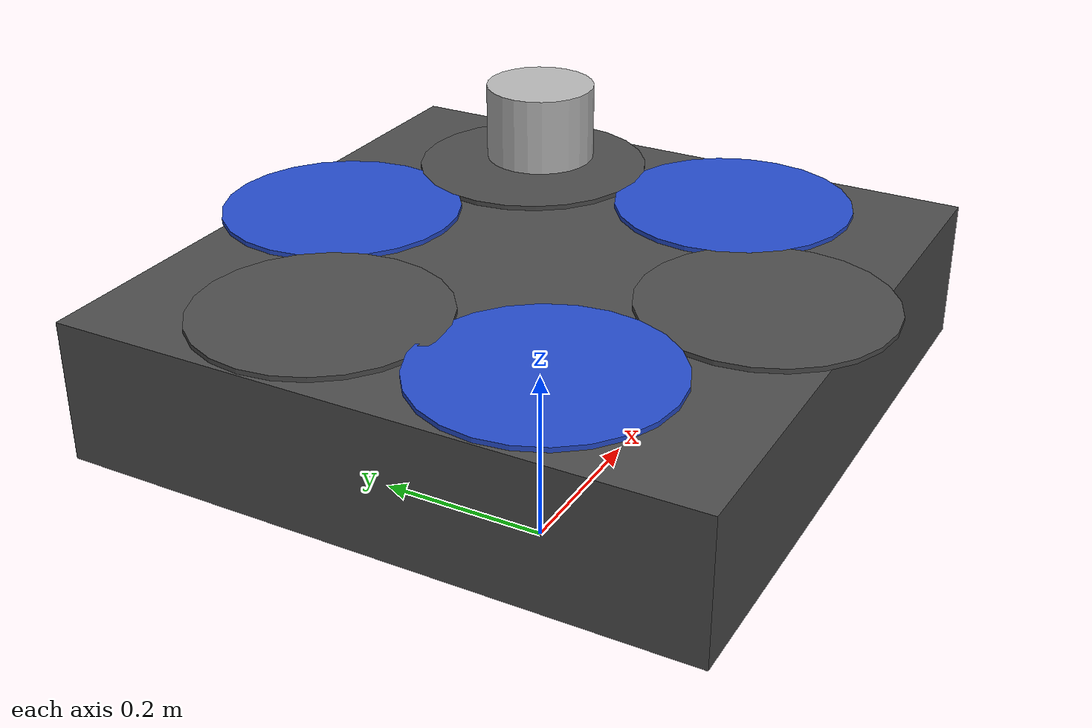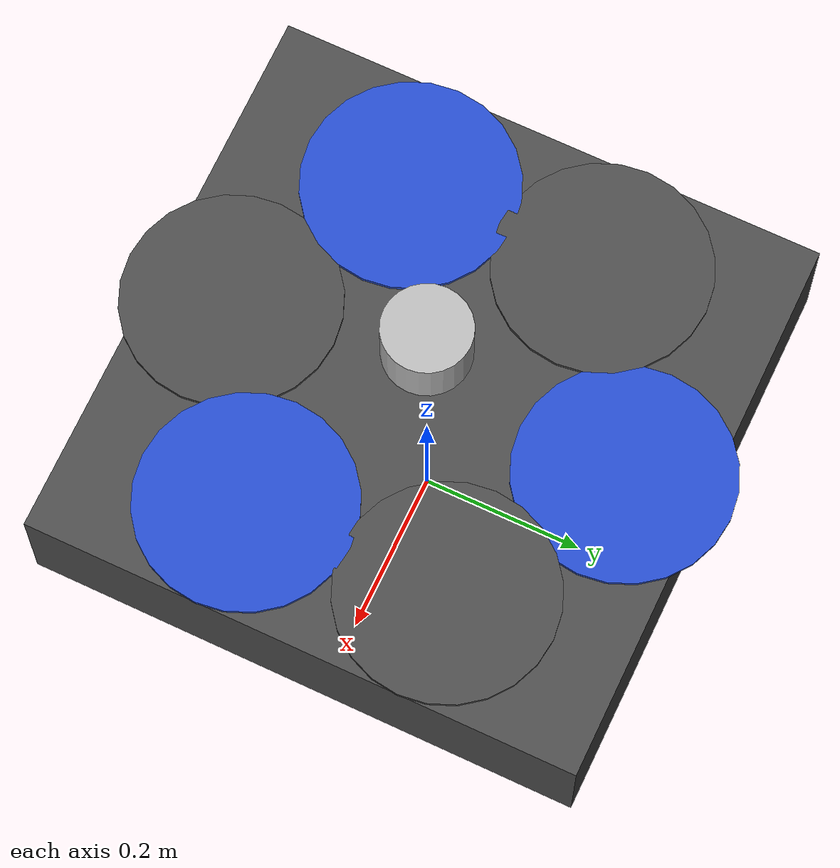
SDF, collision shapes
<?xml version="1.0" ?>
<sdf version='1.5'>
  <model name='typhoon_h480_velodyne'>

    <include>
      <uri>model://typhoon_h480_nocam</uri>
      <name>typhoon_h480_nocam</name>
    </include>

    <include>
      <uri>model://velodyne</uri>
      <pose>0 0 0.45 0 0 1.5708</pose>
      <name>velodyne</name>
    </include>

    <joint name="velodyne_joint" type="fixed">
      <child>velodyne::base_footprint</child>
      <parent>typhoon_h480_nocam::base_link</parent>
    </joint>

  </model>
</sdf>
<!-- vim: set noet fenc=utf-8 ff=unix sts=0 sw=4 ts=4 : -->

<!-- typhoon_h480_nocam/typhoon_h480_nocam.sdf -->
<sdf version='1.5'>
  <model name='typhoon_h480'>
    <!-- Typhoon H body -->
    <pose>0 0 0.26 0 0 3.1415927</pose>
    <link name='base_link'>
      <pose>0 0 0 0 0 0</pose>
      <inertial>
        <!-- rear reference point X: -100.044mm, CAD offset: 1001.049mm -->
        <!-- top reference point Z: 33.8663mm, CAD offset: 42.8698mm -->
        <pose>0.001005 0 -0.0090035 0 0 0</pose>
        <mass>2.02</mass>
        <inertia>
          <ixx>0.011</ixx>
          <ixy>0</ixy>
          <ixz>0</ixz>
          <iyy>0.015</iyy>
          <iyz>0</iyz>
          <izz>0.021</izz>
        </inertia>
      </inertial>
      <collision name='base_link_collision'>
        <pose>0 0 0.0 0 0 0</pose>
        <geometry>
          <box>
            <size>0.67 0.67 0.15</size>
          </box>
        </geometry>
        <surface>
          <contact>
            <ode>
              <min_depth>0.001</min_depth>
              <max_vel>0</max_vel>
            </ode>
          </contact>
          <friction>
            <ode/>
          </friction>
        </surface>
      </collision>
      <visual name='base_link_visual'>
        <pose>0 0 0 0 0 0</pose>
        <geometry>
          <mesh>
            <scale>0.001 0.001 0.001</scale>
            <uri>model://typhoon_h480/meshes/main_body_remeshed_v3.stl</uri>
          </mesh>
        </geometry>
        <material>
          <script>
            <name>Gazebo/DarkGrey</name>
            <uri>file://media/materials/scripts/gazebo.material</uri>
          </script>
        </material>
      </visual>
      <gravity>1</gravity>
      <velocity_decay/>
      <self_collide>0</self_collide>
    </link>

    <link name="left_leg">
      <inertial>
        <!-- place holder -->
        <pose>0 -0.14314 -0.207252 0 0 0</pose>
        <mass>0.1</mass>
        <inertia>
          <ixx>0.001</ixx>
          <ixy>0</ixy>
          <ixz>0</ixz>
          <iyy>0.001</iyy>
          <iyz>0</iyz>
          <izz>0.001</izz>
        </inertia>
      </inertial>
      <collision name='collision'>
        <pose>-0.005 -0.14314 -0.207252 0 1.56893 0</pose>
        <geometry>
          <cylinder>
            <radius>0.012209</radius>
            <length>0.3</length>
          </cylinder>
        </geometry>
        <surface>
          <friction>
            <ode>
              <mu>1</mu>
              <mu2>1</mu2>
            </ode>
          </friction>
          <contact>
            <ode>
              <kp>1e+8</kp>
              <kd>1</kd>
              <max_vel>0.01</max_vel>
              <min_depth>0.001</min_depth>
            </ode>
          </contact>
        </surface>
      </collision>
      <collision name='collision_bar'>
        <pose>0.00052 -0.08503 -0.121187 -0.501318 0 0</pose>
        <geometry>
          <cylinder>
            <radius>0.00914984</radius>
            <length>0.176893</length>
          </cylinder>
        </geometry>
        <surface>
          <friction>
            <ode>
              <mu>1</mu>
              <mu2>1</mu2>
            </ode>
          </friction>
          <contact>
            <ode>
              <kp>1e+8</kp>
              <kd>1</kd>
              <max_vel>0.01</max_vel>
              <min_depth>0.001</min_depth>
            </ode>
          </contact>
        </surface>
      </collision>
      <visual name='base_link_left_leg'>
        <pose>0 0 0 0 0 0</pose>
        <geometry>
          <mesh>
            <scale>0.001 0.001 0.001</scale>
            <uri>model://typhoon_h480/meshes/leg2_remeshed_v3.stl</uri>
          </mesh>
        </geometry>
        <material>
          <script>
            <name>Gazebo/DarkGrey</name>
            <uri>file://media/materials/scripts/gazebo.material</uri>
          </script>
        </material>
      </visual>
    </link>
    <joint name='left_leg_joint' type='revolute'>
      <child>left_leg</child>
      <parent>base_link</parent>
      <pose>0.00026 -0.040515 -0.048 0 0 0</pose>
      <axis>
        <xyz>-1 0 0</xyz>
        <limit>
          <lower>0</lower>
          <upper>1</upper>
          <effort>100</effort>
          <velocity>-1</velocity>
          <stiffness>100000000</stiffness>
          <dissipation>1</dissipation>
        </limit>
        <dynamics>
          <damping>0.1</damping>
        </dynamics>
        <use_parent_model_frame>1</use_parent_model_frame>
      </axis>
      <physics>
        <ode>
          <implicit_spring_damper>1</implicit_spring_damper>
        </ode>
      </physics>
    </joint>

    <link name="right_leg">
      <pose>0 0 0 0 0 0</pose>
      <inertial>
        <!-- place holder -->
        <pose>0 0.14314 -0.207252 0 0 0</pose>
        <mass>0.1</mass>
        <inertia>
          <ixx>0.001</ixx>
          <ixy>0</ixy>
          <ixz>0</ixz>
          <iyy>0.001</iyy>
          <iyz>0</iyz>
          <izz>0.001</izz>
        </inertia>
      </inertial>
      <collision name='collision'>
        <pose>-0.005 0.14314 -0.207252 0 1.56893 0</pose>
        <geometry>
          <cylinder>
            <radius>0.012209</radius>
            <length>0.3</length>
          </cylinder>
        </geometry>
        <surface>
          <friction>
            <ode>
              <mu>1</mu>
              <mu2>1</mu2>
            </ode>
          </friction>
          <contact>
            <ode>
              <kp>1e+8</kp>
              <kd>1</kd>
              <max_vel>0.01</max_vel>
              <min_depth>0.001</min_depth>
            </ode>
          </contact>
        </surface>
      </collision>
      <collision name='collision_bar'>
        <pose>0.00052 0.08503 -0.121187 0.501318 0 0</pose>
        <geometry>
          <cylinder>
            <radius>0.00914984</radius>
            <length>0.176893</length>
          </cylinder>
        </geometry>
        <surface>
          <friction>
            <ode>
              <mu>1</mu>
              <mu2>1</mu2>
            </ode>
          </friction>
          <contact>
            <ode>
              <kp>1e+8</kp>
              <kd>1</kd>
              <max_vel>0.01</max_vel>
              <min_depth>0.001</min_depth>
            </ode>
          </contact>
        </surface>
      </collision>
      <visual name='base_link_right_leg'>
        <pose>0 0 0 0 0 0</pose>
        <geometry>
          <mesh>
            <scale>0.001 0.001 0.001</scale>
            <uri>model://typhoon_h480/meshes/leg1_remeshed_v3.stl</uri>
          </mesh>
        </geometry>
        <material>
          <script>
            <name>Gazebo/DarkGrey</name>
            <uri>file://media/materials/scripts/gazebo.material</uri>
          </script>
        </material>
      </visual>
    </link>
    <joint name='right_leg_joint' type='revolute'>
      <child>right_leg</child>
      <parent>base_link</parent>
      <pose>0.00026 0.040515 -0.048 0 0 0</pose>
      <axis>
        <xyz>1 0 0</xyz>
        <limit>
          <lower>0</lower>
          <upper>1</upper>
          <effort>100</effort>
          <velocity>-1</velocity>
          <stiffness>100000000</stiffness>
          <dissipation>1</dissipation>
        </limit>
        <dynamics>
          <damping>0.1</damping>
        </dynamics>
        <use_parent_model_frame>1</use_parent_model_frame>
      </axis>
      <physics>
        <ode>
          <implicit_spring_damper>1</implicit_spring_damper>
        </ode>
      </physics>
    </joint>

    <link name='typhoon_h480/imu_link'>
      <pose>0 0 0 0 0 3.1415927</pose>
      <inertial>
        <pose>0 0 0 0 0 0</pose>
        <mass>0.015</mass>
        <inertia>
          <ixx>1e-05</ixx>
          <ixy>0</ixy>
          <ixz>0</ixz>
          <iyy>1e-05</iyy>
          <iyz>0</iyz>
          <izz>1e-05</izz>
        </inertia>
      </inertial>
    </link>
    <joint name='typhoon_h480/imu_joint' type='revolute'>
      <child>typhoon_h480/imu_link</child>
      <parent>base_link</parent>
      <axis>
        <xyz>1 0 0</xyz>
        <limit>
          <lower>0</lower>
          <upper>0</upper>
          <effort>0</effort>
          <velocity>0</velocity>
        </limit>
        <dynamics>
          <spring_reference>0</spring_reference>
          <spring_stiffness>0</spring_stiffness>
        </dynamics>
        <use_parent_model_frame>1</use_parent_model_frame>
      </axis>
    </joint>
    <link name='rotor_3'>
      <pose>0.211396 0.119762 0.082219 0 0 0</pose>
      <inertial>
        <pose>0 0 0 0 0 0</pose>
        <mass>0.005</mass>
        <inertia>
          <ixx>9.75e-07</ixx>
          <ixy>0</ixy>
          <ixz>0</ixz>
          <iyy>0.000273104</iyy>
          <iyz>0</iyz>
          <izz>0.000274004</izz>
        </inertia>
      </inertial>
      <collision name='rotor_3_collision'>
        <pose>0 0 0 0 0 0</pose>
        <geometry>
          <cylinder>
            <length>0.005</length>
            <radius>0.128</radius>
          </cylinder>
        </geometry>
        <surface>
          <contact>
            <ode/>
          </contact>
          <friction>
            <ode/>
          </friction>
        </surface>
      </collision>
      <visual name='rotor_3_visual'>
        <pose>-0.211396 -0.119762 -0.082219 0 0 0</pose>
        <geometry>
          <mesh>
            <scale>0.001 0.001 0.001</scale>
            <uri>model://typhoon_h480/meshes/prop_ccw_assembly_remeshed_v3.stl</uri>
          </mesh>
        </geometry>
        <material>
          <script>
            <name>Gazebo/Blue</name>
            <uri>file://media/materials/scripts/gazebo.material</uri>
          </script>
        </material>
      </visual>
      <gravity>1</gravity>
      <velocity_decay/>
      <self_collide>0</self_collide>
    </link>
    <joint name='rotor_3_joint' type='revolute'>
      <child>rotor_3</child>
      <parent>base_link</parent>
      <axis>
        <xyz>0.0446 -0.0825 1.8977</xyz>
        <limit>
          <lower>-1e+16</lower>
          <upper>1e+16</upper>
          <effort>10</effort>
          <velocity>-1</velocity>
        </limit>
        <dynamics>
          <damping>0.005</damping>
        </dynamics>
        <use_parent_model_frame>1</use_parent_model_frame>
      </axis>
      <physics>
        <ode>
          <implicit_spring_damper>1</implicit_spring_damper>
        </ode>
      </physics>
    </joint>
    <link name='rotor_0'>
      <pose>-0.209396 0.122762 0.082219 0 0 2.09439510239</pose>
      <inertial>
        <pose>0 0 0 0 0 0</pose>
        <mass>0.005</mass>
        <inertia>
          <ixx>9.75e-07</ixx>
          <ixy>0</ixy>
          <ixz>0</ixz>
          <iyy>0.000273104</iyy>
          <iyz>0</iyz>
          <izz>0.000274004</izz>
        </inertia>
      </inertial>
      <collision name='rotor_0_collision'>
        <pose>0 0 0 0 0 0</pose>
        <geometry>
          <cylinder>
            <length>0.005</length>
            <radius>0.128</radius>
          </cylinder>
        </geometry>
        <surface>
          <contact>
            <ode/>
          </contact>
          <friction>
            <ode/>
          </friction>
        </surface>
      </collision>
      <visual name='rotor_0_visual'>
        <pose>-0.211396 -0.119762 -0.082219 0 0 0</pose>
        <geometry>
          <mesh>
            <scale>0.001 0.001 0.001</scale>
            <uri>model://typhoon_h480/meshes/prop_ccw_assembly_remeshed_v3.stl</uri>
          </mesh>
        </geometry>
        <material>
          <script>
            <name>Gazebo/Blue</name>
            <uri>file://media/materials/scripts/gazebo.material</uri>
          </script>
        </material>
      </visual>
      <gravity>1</gravity>
      <velocity_decay/>
      <self_collide>0</self_collide>
    </link>
    <joint name='rotor_0_joint' type='revolute'>
      <child>rotor_0</child>
      <parent>base_link</parent>
      <axis>
        <xyz>0.046 0.0827 1.8977</xyz>
        <limit>
          <lower>-1e+16</lower>
          <upper>1e+16</upper>
          <effort>10</effort>
          <velocity>-1</velocity>
        </limit>
        <dynamics>
          <damping>0.005</damping>
        </dynamics>
        <use_parent_model_frame>1</use_parent_model_frame>
      </axis>
      <physics>
        <ode>
          <implicit_spring_damper>1</implicit_spring_damper>
        </ode>
      </physics>
    </joint>
    <link name='rotor_4'>
      <pose>-0.00187896 0.242705 0.0822169 0 0 0</pose>
      <inertial>
        <pose>0 0 0 0 0 0</pose>
        <mass>0.005</mass>
        <inertia>
          <ixx>9.75e-07</ixx>
          <ixy>0</ixy>
          <ixz>0</ixz>
          <iyy>0.000273104</iyy>
          <iyz>0</iyz>
          <izz>0.000274004</izz>
        </inertia>
      </inertial>
      <collision name='rotor_4_collision'>
        <pose>0 0 0 0 0 0</pose>
        <geometry>
          <cylinder>
            <length>0.005</length>
            <radius>0.128</radius>
          </cylinder>
        </geometry>
        <surface>
          <contact>
            <ode/>
          </contact>
          <friction>
            <ode/>
          </friction>
        </surface>
      </collision>
      <visual name='rotor_4_visual'>
        <pose>0.00187896 -0.242705 -0.0822169 0 0 0</pose>
        <geometry>
          <mesh>
            <scale>0.001 0.001 0.001</scale>
            <uri>model://typhoon_h480/meshes/prop_cw_assembly_remeshed_v3.stl</uri>
          </mesh>
        </geometry>
        <material>
          <script>
            <name>Gazebo/DarkGrey</name>
            <uri>file://media/materials/scripts/gazebo.material</uri>
          </script>
        </material>
      </visual>
      <gravity>1</gravity>
      <velocity_decay/>
      <self_collide>0</self_collide>
    </link>
    <joint name='rotor_4_joint' type='revolute'>
      <child>rotor_4</child>
      <parent>base_link</parent>
      <axis>
        <xyz>-0.09563 -0.0003 1.8976</xyz>
        <limit>
          <lower>-1e+16</lower>
          <upper>1e+16</upper>
          <effort>10</effort>
          <velocity>-1</velocity>
        </limit>
        <dynamics>
          <damping>0.005</damping>
        </dynamics>
        <use_parent_model_frame>1</use_parent_model_frame>
      </axis>
      <physics>
        <ode>
          <implicit_spring_damper>1</implicit_spring_damper>
        </ode>
      </physics>
    </joint>
    <link name='rotor_1'>
      <pose>0.211396 -0.119762 0.082219 0 0 -2.09439510239</pose>
      <inertial>
        <pose>0 0 0 0 0 0</pose>
        <mass>0.005</mass>
        <inertia>
          <ixx>9.75e-07</ixx>
          <ixy>0</ixy>
          <ixz>0</ixz>
          <iyy>0.000273104</iyy>
          <iyz>0</iyz>
          <izz>0.000274004</izz>
        </inertia>
      </inertial>
      <collision name='rotor_1_collision'>
        <pose>0 0 0 0 0 0</pose>
        <geometry>
          <cylinder>
            <length>0.005</length>
            <radius>0.128</radius>
          </cylinder>
        </geometry>
        <surface>
          <contact>
            <ode/>
          </contact>
          <friction>
            <ode/>
          </friction>
        </surface>
      </collision>
      <visual name='rotor_1_visual'>
        <pose>0.00187896 -0.242705 -0.0822169 0 0 0</pose>
        <geometry>
          <mesh>
            <scale>0.001 0.001 0.001</scale>
            <uri>model://typhoon_h480/meshes/prop_cw_assembly_remeshed_v3.stl</uri>
          </mesh>
        </geometry>
        <material>
          <script>
            <name>Gazebo/DarkGrey</name>
            <uri>file://media/materials/scripts/gazebo.material</uri>
          </script>
        </material>
      </visual>
      <gravity>1</gravity>
      <velocity_decay/>
      <self_collide>0</self_collide>
    </link>
    <joint name='rotor_1_joint' type='revolute'>
      <child>rotor_1</child>
      <parent>base_link</parent>
      <axis>
        <xyz>0.0486 0.0811 1.8976</xyz>
        <limit>
          <lower>-1e+16</lower>
          <upper>1e+16</upper>
          <effort>10</effort>
          <velocity>-1</velocity>
        </limit>
        <dynamics>
          <damping>0.005</damping>
        </dynamics>
        <use_parent_model_frame>1</use_parent_model_frame>
      </axis>
      <physics>
        <ode>
          <implicit_spring_damper>1</implicit_spring_damper>
        </ode>
      </physics>
    </joint>

    <link name='rotor_5'>
      <pose>-0.00187896 -0.242705 0.0822169 0 0 -2.09439510239</pose>
      <inertial>
        <pose>0 0 0 0 0 0</pose>
        <mass>0.005</mass>
        <inertia>
          <ixx>9.75e-07</ixx>
          <ixy>0</ixy>
          <ixz>0</ixz>
          <iyy>0.000273104</iyy>
          <iyz>0</iyz>
          <izz>0.000274004</izz>
        </inertia>
      </inertial>
      <collision name='rotor_5_collision'>
        <pose>0 0 0 0 0 0</pose>
        <geometry>
          <cylinder>
            <length>0.005</length>
            <radius>0.128</radius>
          </cylinder>
        </geometry>
        <surface>
          <contact>
            <ode/>
          </contact>
          <friction>
            <ode/>
          </friction>
        </surface>
      </collision>
      <visual name='rotor_5_visual'>
        <pose>-0.211396 -0.119762 -0.082219 0 0 0</pose>
        <geometry>
          <mesh>
            <scale>0.001 0.001 0.001</scale>
            <uri>model://typhoon_h480/meshes/prop_ccw_assembly_remeshed_v3.stl</uri>
          </mesh>
        </geometry>
        <material>
          <script>
            <name>Gazebo/Blue</name>
            <uri>file://media/materials/scripts/gazebo.material</uri>
          </script>
        </material>
      </visual>
      <gravity>1</gravity>
      <velocity_decay/>
      <self_collide>0</self_collide>
    </link>
    <joint name='rotor_5_joint' type='revolute'>
      <child>rotor_5</child>
      <parent>base_link</parent>
      <axis>
        <xyz>-0.033996 -0.0006 0.68216</xyz>
        <limit>
          <lower>-1e+16</lower>
          <upper>1e+16</upper>
          <effort>10</effort>
          <velocity>-1</velocity>
        </limit>
        <dynamics>
          <damping>0.005</damping>
        </dynamics>
        <use_parent_model_frame>1</use_parent_model_frame>
      </axis>
      <physics>
        <ode>
          <implicit_spring_damper>1</implicit_spring_damper>
        </ode>
      </physics>
    </joint>
    <link name='rotor_2'>
      <pose>-0.209396 -0.122762 0.082219 0 0 2.09439510239</pose>
      <inertial>
        <pose>0 0 0 0 0 0</pose>
        <mass>0.005</mass>
        <inertia>
          <ixx>9.75e-07</ixx>
          <ixy>0</ixy>
          <ixz>0</ixz>
          <iyy>0.000273104</iyy>
          <iyz>0</iyz>
          <izz>0.000274004</izz>
        </inertia>
      </inertial>
      <collision name='rotor_2_collision'>
        <pose>0 0 0 0 0 0</pose>
        <geometry>
          <cylinder>
            <length>0.005</length>
            <radius>0.128</radius>
          </cylinder>
        </geometry>
        <surface>
          <contact>
            <ode/>
          </contact>
          <friction>
            <ode/>
          </friction>
        </surface>
      </collision>
      <visual name='rotor_2_visual'>
        <pose>0.00187896 -0.242705 -0.0822169 0 0 0</pose>
        <geometry>
          <mesh>
            <scale>0.001 0.001 0.001</scale>
            <uri>model://typhoon_h480/meshes/prop_cw_assembly_remeshed_v3.stl</uri>
          </mesh>
        </geometry>
        <material>
          <script>
            <name>Gazebo/DarkGrey</name>
            <uri>file://media/materials/scripts/gazebo.material</uri>
          </script>
        </material>
      </visual>
      <gravity>1</gravity>
      <velocity_decay/>
      <self_collide>0</self_collide>
    </link>
    <joint name='rotor_2_joint' type='revolute'>
      <child>rotor_2</child>
      <parent>base_link</parent>
      <axis>
        <xyz>0.0404 -0.0876 1.8976</xyz>
        <limit>
          <lower>-1e+16</lower>
          <upper>1e+16</upper>
          <effort>10</effort>
          <velocity>-1</velocity>
        </limit>
        <dynamics>
          <damping>0.005</damping>
        </dynamics>
        <use_parent_model_frame>1</use_parent_model_frame>
      </axis>
      <physics>
        <ode>
          <implicit_spring_damper>1</implicit_spring_damper>
        </ode>
      </physics>
    </joint>

    <plugin name='rosbag' filename='librotors_gazebo_multirotor_base_plugin.so'>
      <robotNamespace></robotNamespace>
      <linkName>base_link</linkName>
      <rotorVelocitySlowdownSim>10</rotorVelocitySlowdownSim>
    </plugin>
    <plugin name='front_right_motor_model' filename='librotors_gazebo_motor_model.so'>
      <robotNamespace></robotNamespace>
      <jointName>rotor_0_joint</jointName>
      <linkName>rotor_0</linkName>
      <turningDirection>ccw</turningDirection>
      <timeConstantUp>0.0125</timeConstantUp>
      <timeConstantDown>0.025</timeConstantDown>
      <maxRotVelocity>1500</maxRotVelocity>
      <motorConstant>8.54858e-06</motorConstant>
      <momentConstant>0.06</momentConstant>
      <commandSubTopic>/gazebo/command/motor_speed</commandSubTopic>
      <motorNumber>4</motorNumber>
      <rotorDragCoefficient>0.000806428</rotorDragCoefficient>
      <rollingMomentCoefficient>1e-06</rollingMomentCoefficient>
      <motorSpeedPubTopic>/motor_speed/4</motorSpeedPubTopic>
      <rotorVelocitySlowdownSim>10</rotorVelocitySlowdownSim>
    </plugin>
    <plugin name='back_left_motor_model' filename='librotors_gazebo_motor_model.so'>
      <robotNamespace></robotNamespace>
      <jointName>rotor_1_joint</jointName>
      <linkName>rotor_1</linkName>
      <turningDirection>cw</turningDirection>
      <timeConstantUp>0.0125</timeConstantUp>
      <timeConstantDown>0.025</timeConstantDown>
      <maxRotVelocity>1500</maxRotVelocity>
      <motorConstant>8.54858e-06</motorConstant>
      <momentConstant>0.06</momentConstant>
      <commandSubTopic>/gazebo/command/motor_speed</commandSubTopic>
      <motorNumber>5</motorNumber>
      <rotorDragCoefficient>0.000806428</rotorDragCoefficient>
      <rollingMomentCoefficient>1e-06</rollingMomentCoefficient>
      <motorSpeedPubTopic>/motor_speed/5</motorSpeedPubTopic>
      <rotorVelocitySlowdownSim>10</rotorVelocitySlowdownSim>
    </plugin>
    <plugin name='front_left_motor_model' filename='librotors_gazebo_motor_model.so'>
      <robotNamespace></robotNamespace>
      <jointName>rotor_2_joint</jointName>
      <linkName>rotor_2</linkName>
      <turningDirection>cw</turningDirection>
      <timeConstantUp>0.0125</timeConstantUp>
      <timeConstantDown>0.025</timeConstantDown>
      <maxRotVelocity>1500</maxRotVelocity>
      <motorConstant>8.54858e-06</motorConstant>
      <momentConstant>0.06</momentConstant>
      <commandSubTopic>/gazebo/command/motor_speed</commandSubTopic>
      <motorNumber>2</motorNumber>
      <rotorDragCoefficient>0.000806428</rotorDragCoefficient>
      <rollingMomentCoefficient>1e-06</rollingMomentCoefficient>
      <motorSpeedPubTopic>/motor_speed/2</motorSpeedPubTopic>
      <rotorVelocitySlowdownSim>10</rotorVelocitySlowdownSim>
    </plugin>
    <plugin name='back_right_motor_model' filename='librotors_gazebo_motor_model.so'>
      <robotNamespace></robotNamespace>
      <jointName>rotor_3_joint</jointName>
      <linkName>rotor_3</linkName>
      <turningDirection>ccw</turningDirection>
      <timeConstantUp>0.0125</timeConstantUp>
      <timeConstantDown>0.025</timeConstantDown>
      <maxRotVelocity>1500</maxRotVelocity>
      <motorConstant>8.54858e-06</motorConstant>
      <momentConstant>0.06</momentConstant>
      <commandSubTopic>/gazebo/command/motor_speed</commandSubTopic>
      <motorNumber>3</motorNumber>
      <rotorDragCoefficient>0.000806428</rotorDragCoefficient>
      <rollingMomentCoefficient>1e-06</rollingMomentCoefficient>
      <motorSpeedPubTopic>/motor_speed/3</motorSpeedPubTopic>
      <rotorVelocitySlowdownSim>10</rotorVelocitySlowdownSim>
    </plugin>
    <plugin name='back_left_motor_model' filename='librotors_gazebo_motor_model.so'>
      <robotNamespace></robotNamespace>
      <jointName>rotor_4_joint</jointName>
      <linkName>rotor_4</linkName>
      <turningDirection>cw</turningDirection>
      <timeConstantUp>0.0125</timeConstantUp>
      <timeConstantDown>0.025</timeConstantDown>
      <maxRotVelocity>1500</maxRotVelocity>
      <motorConstant>8.54858e-06</motorConstant>
      <momentConstant>0.06</momentConstant>
      <commandSubTopic>/gazebo/command/motor_speed</commandSubTopic>
      <motorNumber>0</motorNumber>
      <rotorDragCoefficient>0.000806428</rotorDragCoefficient>
      <rollingMomentCoefficient>1e-06</rollingMomentCoefficient>
      <motorSpeedPubTopic>/motor_speed/0</motorSpeedPubTopic>
      <rotorVelocitySlowdownSim>10</rotorVelocitySlowdownSim>
    </plugin>
    <plugin name='front_left_motor_model' filename='librotors_gazebo_motor_model.so'>
      <robotNamespace></robotNamespace>
      <jointName>rotor_5_joint</jointName>
      <linkName>rotor_5</linkName>
      <turningDirection>ccw</turningDirection>
      <timeConstantUp>0.0125</timeConstantUp>
      <timeConstantDown>0.025</timeConstantDown>
      <maxRotVelocity>1500</maxRotVelocity>
      <motorConstant>8.54858e-06</motorConstant>
      <momentConstant>0.06</momentConstant>
      <commandSubTopic>/gazebo/command/motor_speed</commandSubTopic>
      <motorNumber>1</motorNumber>
      <rotorDragCoefficient>0.000806428</rotorDragCoefficient>
      <rollingMomentCoefficient>1e-06</rollingMomentCoefficient>
      <motorSpeedPubTopic>/motor_speed/1</motorSpeedPubTopic>
      <rotorVelocitySlowdownSim>10</rotorVelocitySlowdownSim>
    </plugin>
    <plugin name="gps_plugin" filename="libgazebo_gps_plugin.so">
        <robotNamespace></robotNamespace>
        <gpsNoise>true</gpsNoise>
    </plugin>
    <plugin name='mavlink_interface' filename='librotors_gazebo_mavlink_interface.so'>
      <robotNamespace></robotNamespace>
      <imuSubTopic>/imu</imuSubTopic>
      <gpsSubTopic>/gps</gpsSubTopic>
      <motorSpeedCommandPubTopic>/gazebo/command/motor_speed</motorSpeedCommandPubTopic>

      <control_channels>
        <channel name="rotor0">
          <input_index>0</input_index>
          <input_offset>0</input_offset>
          <input_scaling>1500</input_scaling>
          <zero_position_disarmed>0</zero_position_disarmed>
          <zero_position_armed>100</zero_position_armed>
          <joint_control_type>velocity</joint_control_type>
          <joint_name>rotor_4_joint</joint_name>
        </channel>
        <channel name="rotor1">
          <input_index>1</input_index>
          <input_offset>0</input_offset>
          <input_scaling>1500</input_scaling>
          <zero_position_disarmed>0</zero_position_disarmed>
          <zero_position_armed>100</zero_position_armed>
          <joint_control_type>velocity</joint_control_type>
          <joint_name>rotor_5_joint</joint_name>
        </channel>
        <channel name="rotor2">
          <input_index>2</input_index>
          <input_offset>0</input_offset>
          <input_scaling>1500</input_scaling>
          <zero_position_disarmed>0</zero_position_disarmed>
          <zero_position_armed>100</zero_position_armed>
          <joint_control_type>velocity</joint_control_type>
          <joint_name>rotor_2_joint</joint_name>
        </channel>
        <channel name="rotor3">
          <input_index>3</input_index>
          <input_offset>0</input_offset>
          <input_scaling>1500</input_scaling>
          <zero_position_disarmed>0</zero_position_disarmed>
          <zero_position_armed>100</zero_position_armed>
          <joint_control_type>velocity</joint_control_type>
          <joint_name>rotor_3_joint</joint_name>
        </channel>
        <channel name="rotor4">
          <input_index>4</input_index>
          <input_offset>0</input_offset>
          <input_scaling>1500</input_scaling>
          <zero_position_disarmed>0</zero_position_disarmed>
          <zero_position_armed>100</zero_position_armed>
          <joint_control_type>velocity</joint_control_type>
          <joint_name>rotor_0_joint</joint_name>
        </channel>
        <channel name="rotor5">
          <input_index>5</input_index>
          <input_offset>0</input_offset>
          <input_scaling>1500</input_scaling>
          <zero_position_disarmed>0</zero_position_disarmed>
          <zero_position_armed>100</zero_position_armed>
          <joint_control_type>velocity</joint_control_type>
          <joint_name>rotor_1_joint</joint_name>
        </channel>
        <channel name="left_leg">
          <input_index>9</input_index>
          <input_offset>1</input_offset>
          <input_scaling>0.5</input_scaling>
          <zero_position_disarmed>0</zero_position_disarmed>
          <zero_position_armed>0</zero_position_armed>
          <joint_control_type>position</joint_control_type>
          <joint_control_pid>
            <p>3.5</p>
            <i>0.5</i>
            <d>0</d>
            <iMax>4</iMax>
            <iMin>-4</iMin>
            <cmdMax>6</cmdMax>
            <cmdMin>-6</cmdMin>
          </joint_control_pid>
          <joint_name>left_leg_joint</joint_name>
        </channel>
        <channel name="right_leg">
          <input_index>10</input_index>
          <input_offset>1</input_offset>
          <input_scaling>0.5</input_scaling>
          <zero_position_disarmed>0</zero_position_disarmed>
          <zero_position_armed>0</zero_position_armed>
          <joint_control_type>position</joint_control_type>
          <joint_control_pid>
            <p>3.5</p>
            <i>0.5</i>
            <d>0</d>
            <iMax>4</iMax>
            <iMin>-4</iMin>
            <cmdMax>6</cmdMax>
            <cmdMin>-6</cmdMin>
          </joint_control_pid>
          <joint_name>right_leg_joint</joint_name>
        </channel>
      </control_channels>
    </plugin>
    <static>0</static>
    <plugin name='rotors_gazebo_imu_plugin' filename='librotors_gazebo_imu_plugin.so'>
      <robotNamespace></robotNamespace>
      <linkName>typhoon_h480/imu_link</linkName>
      <imuTopic>/imu</imuTopic>
      <gyroscopeNoiseDensity>0.0003394</gyroscopeNoiseDensity>
      <gyroscopeRandomWalk>3.8785e-05</gyroscopeRandomWalk>
      <gyroscopeBiasCorrelationTime>1000.0</gyroscopeBiasCorrelationTime>
      <gyroscopeTurnOnBiasSigma>0.0087</gyroscopeTurnOnBiasSigma>
      <accelerometerNoiseDensity>0.004</accelerometerNoiseDensity>
      <accelerometerRandomWalk>0.006</accelerometerRandomWalk>
      <accelerometerBiasCorrelationTime>300.0</accelerometerBiasCorrelationTime>
      <accelerometerTurnOnBiasSigma>0.196</accelerometerTurnOnBiasSigma>
    </plugin>
  </model>
</sdf>

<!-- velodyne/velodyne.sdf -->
<sdf version='1.6'>
  <model name='velodyne'>
    <link name='base_footprint'>
      <pose frame=''>0 0 0 0 -0 0</pose>
      <inertial>
        <pose frame=''>0 0 0.035872 0 -0 0</pose>
        <mass>0.84</mass>
        <inertia>
          <ixx>0.000908193</ixx>
          <ixy>0</ixy>
          <ixz>0</ixz>
          <iyy>0.000908193</iyy>
          <iyz>0</iyz>
          <izz>0.00110506</izz>
        </inertia>
      </inertial>
      <collision name='base_footprint_fixed_joint_lump__velodyne_base_link_collision'>
        <pose frame=''>0 0 0.03585 0 -0 0</pose>
        <geometry>
          <cylinder>
            <length>0.0717</length>
            <radius>0.0516</radius>
          </cylinder>
        </geometry>
      </collision>
      <visual name='base_footprint_fixed_joint_lump__velodyne_base_link_visual'>
        <pose frame=''>0 0 0 0 -0 0</pose>
        <geometry>
          <mesh>
            <scale>1 1 1</scale>
            <uri>model://velodyne/meshes/VLP16_base_1.dae</uri>
          </mesh>
        </geometry>
      </visual>
      <visual name='base_footprint_fixed_joint_lump__velodyne_base_link_visual_1'>
        <pose frame=''>0 0 0 0 -0 0</pose>
        <geometry>
          <mesh>
            <scale>1 1 1</scale>
            <uri>model://velodyne/meshes/VLP16_base_2.dae</uri>
          </mesh>
        </geometry>
      </visual>
      <visual name='base_footprint_fixed_joint_lump__velodyne_visual_2'>
        <pose frame=''>0 0 0 0 -0 0</pose>
        <geometry>
          <mesh>
            <scale>1 1 1</scale>
            <uri>model://velodyne/meshes/VLP16_scan.dae</uri>
          </mesh>
        </geometry>
        <material>
          <script>
            <uri>__default__</uri>
            <name>__default__</name>
          </script>
        </material>
      </visual>
      <gravity>1</gravity>
      <velocity_decay/>
      <self_collide>0</self_collide>
      <sensor name='velodyne-VLP16' type='ray'>
        <visualize>0</visualize>
        <update_rate>10</update_rate>
        <ray>
          <scan>
            <horizontal>
              <samples>440</samples>
              <resolution>1</resolution>
              <min_angle>-3.14159</min_angle>
              <max_angle>3.14159</max_angle>
            </horizontal>
            <vertical>
              <samples>16</samples>
              <resolution>1</resolution>
              <min_angle>-0.261799</min_angle>
              <max_angle>0.261799</max_angle>
            </vertical>
          </scan>
          <range>
            <min>0.3</min>
            <max>131</max>
            <resolution>0.001</resolution>
          </range>
          <noise>
            <type>gaussian</type>
            <mean>0</mean>
            <stddev>0</stddev>
          </noise>
        </ray>
        <plugin name='gazebo_ros_laser_controller' filename='libgazebo_velodyne_laser_plugin.so'>
          <topicName>point_cloud</topicName>
          <robotNamespace>velodyne</robotNamespace>
          <frameName>point_cloud</frameName>
          <min_range>0.9</min_range>
          <max_range>130.0</max_range>
          <gaussianNoise>0.008</gaussianNoise>
        </plugin>
        <pose frame=''>0 0 0.0377 0 -0 0</pose>
      </sensor>
    </link>
  </model>
</sdf>
